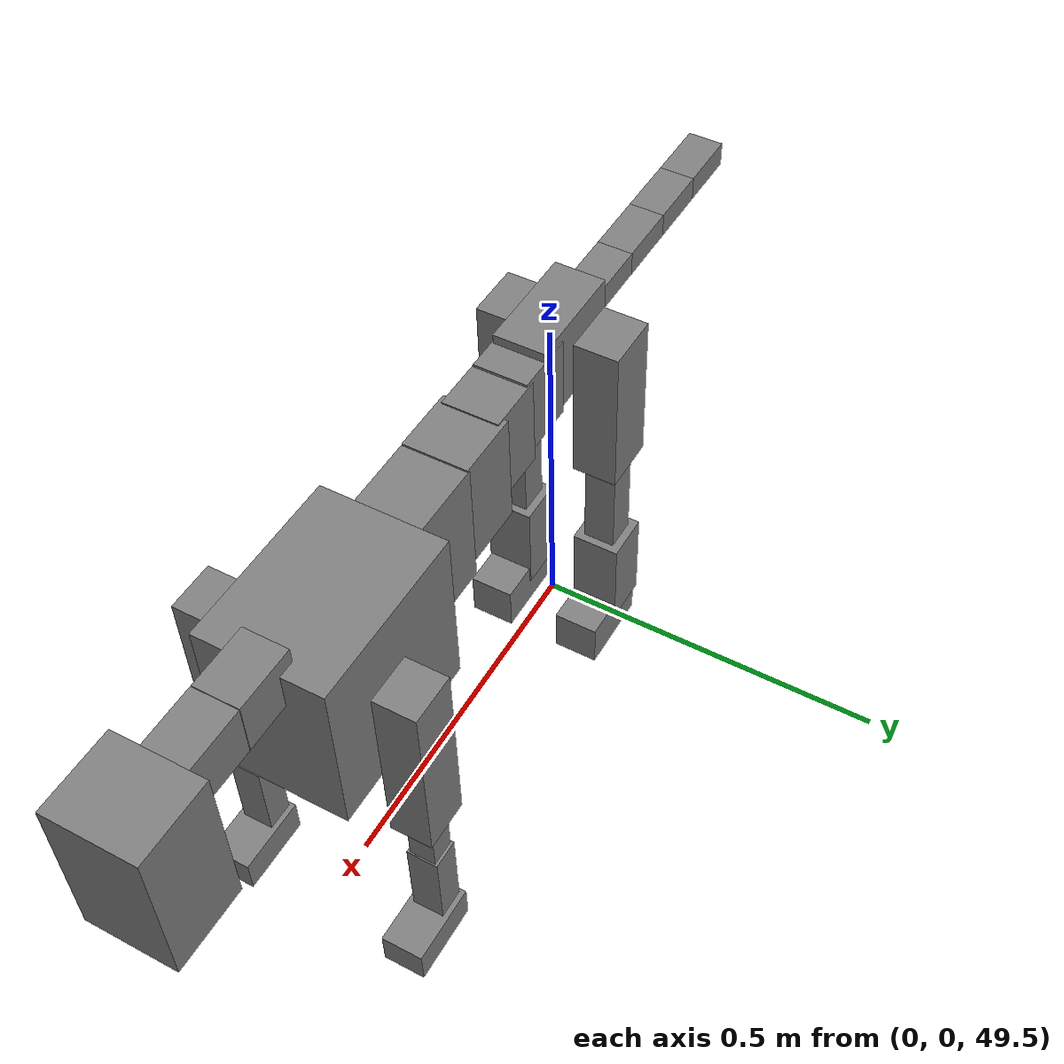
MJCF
<mujoco model="dog">

    <default>
        <joint armature="0.02" stiffness="1" damping="0.2" limited="true"/>
        <geom condim="3" friction="1 0.05 0.05" margin="0.01"/>
        <motor ctrllimited="true" ctrlrange="-1.0 1.0" forcelimited="true" gear="50"/>
    </default>

    <compiler inertiafromgeom="true" angle="radian"/>

    <option timestep="0.016" iterations="50" tolerance="1e-10" solver="Newton" jacobian="dense" cone="pyramidal"/>

    <size nconmax="20000" njmax="60000" nstack="5000000"/>
    <visual>
        <map force="0.1" zfar="30"/>
        <rgba haze="0.15 0.25 0.35 1"/>
        <quality shadowsize="2048"/>
        <global offwidth="800" offheight="800"/>
    </visual>

    <asset>
        <texture type="skybox" builtin="gradient" rgb1="0.3 0.5 0.7" rgb2="0 0 0" width="512" height="512"/>
        <texture name="texplane" type="2d" builtin="checker" rgb1=".2 .3 .4" rgb2=".1 0.15 0.2" width="512" height="512"
                 mark="cross" markrgb=".8 .8 .8"/>
        <texture name="texgeom" type="cube" builtin="flat" mark="cross" width="127" height="1278" rgb1="0.8 0.6 0.4"
                 rgb2="0.8 0.6 0.4" markrgb="1 1 1" random="0.01"/>

        <material name="matplane" reflectance="0.3" texture="texplane" texrepeat="1 1" texuniform="true"/>
        <material name="matgeom" texture="texgeom" texuniform="true" rgba="0.8 0.6 .4 1"/>
    </asset>

    <worldbody>
        <geom name="floor" pos="0 0 0" size="0 0 .25" type="plane" material="matplane" condim="3"/>

        <light directional="false" diffuse=".2 .2 .2" specular="0 0 0" pos="0 0 5" dir="0 0 -1" castshadow="false"/>
        <light mode="targetbodycom" target="torso" directional="false" diffuse=".8 .8 .8" specular="0.3 0.3 0.3"
               pos="0 0 4.0" dir="0 0 -1"/>

        <body name="root" pos="0 0 50">
            <freejoint name="root_1"/>
            <geom type="box" pos="0 0 -0.02" size="0.0774  0.0358  0.063" density="2030"/>

            <body name="spine1" pos="0.054 0 0">
                <joint name="spine1_y" axis="0 1 0" range="0 0.7" limited="true"/>
                <geom type="box" pos="0.02375 0 -0.03" size="0.04375  0.0375  0.05985" density="2030"/>

                <body name="spine2" pos="0.0612 0 0">
                    <joint name="spine2_y" axis="0 1 0" range="-0.15 0.15" limited="true"/>
                    <geom type="box" pos="0.03555  0  -0.04" size="0.04055  0.039  0.06615" density="2030"/>

                    <body name="spine3" pos="0.0730 0 0">
                        <joint name="spine3_y" axis="0 1 0" range="-0.15 0.15" limited="true"/>
                        <geom type="box" pos="0.03555  0  -0.057" size="0.04555  0.0445  0.081" density="2030"/>

                        <body name="spine4" pos="0.0780 0 0">
                            <joint name="spine4_y" axis="0 1 0" range="-0.15 0.15" limited="true"/>
                            <geom type="box" pos="0.05265  0  -0.07" size="0.05265  0.045  0.09135" density="2030"/>

                            <body name="torso" pos="0.1082 0 0">
                                <joint name="torso_y" axis="0 1 0" range="-0.15 0.15" limited="true"/>
                                <geom type="box" pos="0.11925  0  -0.085" size="0.11925  0.085  0.11745"
                                      density="2030"/>

                                <body name="neck1" pos="0.2160  0   0.0180">
                                    <joint name="neck1_y" axis="0 1 0" range="-1.2  -1" limited="true"/>
                                    <geom type="box" pos="0.0423  0  0" size="0.0423  0.03  0.036" density="2325"/>

                                    <body name="neck2" pos="0.0853  0  0">
                                        <joint name="neck2_y" axis="0 1 0" range="0.1  0" limited="true"/>
                                        <geom type="box" pos="0.0423  0  0" size="0.0423  0.03  0.036" density="2325"/>

                                        <body name="head" pos="0.0853  0  0">
                                            <joint name="head_y" axis="0 1 0" range="-0.3  -0.2" limited="true"/>
                                            <geom type="box" pos="0.0531  0  -0.055" size="0.0531  0.06  0.1044"
                                                  density="4030"/>

                                        </body>
                                    </body>
                                </body>

                                <body name="front_shoulder" pos="0.156  0   -0.0480">
                                    <joint name="front_shoulder_y" axis="0 1 0" range="-1 1.5" limited="true"/>
                                    <geom type="box" pos="0 0.13 -0.1004" size="0.0330  0.0282  0.1270" density="1158"/>
                                    <geom type="box" pos="0 -0.13 -0.1004" size="0.0330  0.0282  0.1270"
                                          density="1158"/>

                                    <body name="front_elbow" pos="0  0  -0.2008">
                                        <joint name="front_elbow_y" axis="0 1 0" range="-2 0" limited="true"/>
                                        <geom type="box" pos="0 0.13 -0.0552" size="0.0172  0.0176  0.0552"
                                              density="1081"/>
                                        <geom type="box" pos="0 -0.13 -0.0552" size="0.0172  0.0176  0.0552"
                                              density="1081"/>

                                        <body name="front_wrist" pos="0  0  -0.1105">
                                            <joint name="front_wrist_y" axis="0 1 0" range="-0.2 0" limited="true"/>
                                            <geom type="box" pos="0 0.13 -0.0617" size="0.0192  0.0214  0.0749"
                                                  density="1664"/>
                                            <geom type="box" pos="0 -0.13 -0.0617" size="0.0192  0.0214  0.0749"
                                                  density="1664"/>

                                            <body name="front_finger_end" pos="0  0  -0.1234">
                                                <joint name="front_finger_y" axis="0 1 0" range="-0.4 1"
                                                       limited="true"/>
                                                <geom type="box" pos="0.0286  0.13  -0.0098"
                                                      size="0.0525  0.0286  0.0248" density="1515"/>
                                                <geom type="box" pos="0.0286  -0.13  -0.0098"
                                                      size="0.0525  0.0286  0.0248" density="1515"/>

                                            </body>

                                        </body>
                                    </body>
                                </body>

                            </body>
                        </body>
                    </body>
                </body>
            </body>

            <body name="back_hip" pos="-0.03 0 -0.018">
                <joint name="back_hip_y" axis="0 1 0" range="-1.5 0.3" limited="true"/>
                <geom type="box" pos="0 0.07 -0.0887" size="0.0401  0.0314  0.1115" density="1154"/>
                <geom type="box" pos="0 -0.07 -0.0887" size="0.0401  0.0314  0.1115" density="1154"/>

                <body name="back_knee" pos="0  0  -0.1774">
                    <joint name="back_knee_y" axis="0 1 0" range="0 2.8" limited="true"/>
                    <geom type="box" pos="0 0.07 -0.0903" size="0.0227  0.0224  0.1059" density="1227"/>
                    <geom type="box" pos="0 -0.07 -0.0903" size="0.0227  0.0224  0.1059" density="1227"/>

                    <body name="back_ankle" pos="0  0  -0.1806">
                        <joint name="back_ankle_y" axis="0 1 0" range="-2.2 0" limited="true"/>
                        <geom type="box" pos="0 0.07 -0.0597" size="0.0339  0.0339  0.0709" density="1284"/>
                        <geom type="box" pos="0 -0.07 -0.0597" size="0.0339  0.0339  0.0709" density="1284"/>

                        <body name="back_toe_end" pos="0  0  -0.1194">
                            <joint name="back_toe_y" axis="0 1 0" range="-0.4 1" limited="true"/>
                            <geom type="box" pos="0.0319  0.07  -0.0185" size="0.0584  0.0319  0.0335" density="1515"/>
                            <geom type="box" pos="0.0319  -0.07  -0.0185" size="0.0584  0.0319  0.0335" density="1515"/>

                        </body>
                    </body>
                </body>
            </body>

            <body name="tail1" pos="-0.074 0 -0.006">
                <joint name="tail1_y" axis="0 1 0" range="-0.2 0.2" limited="true"/>
                <geom type="box" pos="-0.0536  0  0" size="0.045  0.025  0.0175" density="1587"/>

                <body name="tail2" pos="-0.09 0 0">
                    <joint name="tail2_y" axis="0 1 0" range="-0.2 0.2" limited="true"/>
                    <geom type="box" pos="-0.0536  0  0" size="0.045  0.025  0.0175" density="1587"/>

                    <body name="tail3" pos="-0.09 0 0">
                        <joint name="tail3_y" axis="0 1 0" range="-0.2 0.2" limited="true"/>
                        <geom type="box" pos="-0.0536  0  0" size="0.045  0.025  0.0175" density="1587"/>

                        <body name="tail4" pos="-0.09 0 0">
                            <joint name="tail4_y" axis="0 1 0" range="-0.2 0.2" limited="true"/>
                            <geom type="box" pos="-0.0536  0  0" size="0.045  0.025  0.0175" density="1587"/>

                        </body>
                    </body>
                </body>
            </body>
        </body>
    </worldbody>

    <actuator>
        <motor joint="spine1_y" forcerange="-150 150     "/>
        <motor joint="spine2_y" forcerange="-150 150     "/>
        <motor joint="spine3_y" forcerange="-150 150     "/>
        <motor joint="spine4_y" forcerange="-150 150     "/>
        <motor joint="torso_y" forcerange="-150 150     "/>
        <motor joint="neck1_y" forcerange="-100 100       "/>
        <motor joint="neck2_y" forcerange="-100 100       "/>
        <motor joint="head_y" forcerange="-150 150       "/>
        <motor joint="front_shoulder_y" forcerange="-103.96 183.89"/>
        <motor joint="front_elbow_y" forcerange="-119.30 108.43"/>
        <motor joint="front_wrist_y" forcerange="-91.33 79.57"/>
        <motor joint="front_finger_y" forcerange="-31.86 80.79"/>
        <motor joint="back_hip_y" forcerange="-355.16 263.71"/>
        <motor joint="back_knee_y" forcerange="-203.77 321.76"/>
        <motor joint="back_angle_y" forcerange="-207.52 235.44"/>
        <motor joint="back_toe_y" forcerange="-108.54 66.49"/>
        <motor joint="tail1_y" forcerange="-50 50     "/>
        <motor joint="tail2_y" forcerange="-50 50     "/>
        <motor joint="tail3_y" forcerange="-50 50     "/>
        <motor joint="tail4_y" forcerange="-50 50     "/>
    </actuator>
</mujoco>
